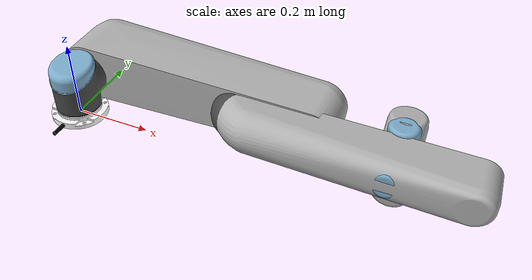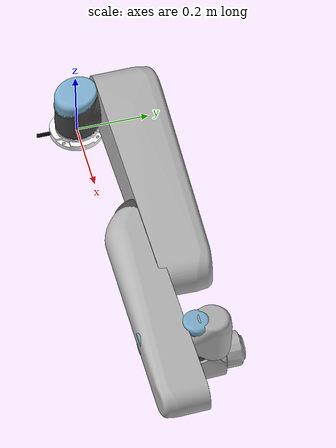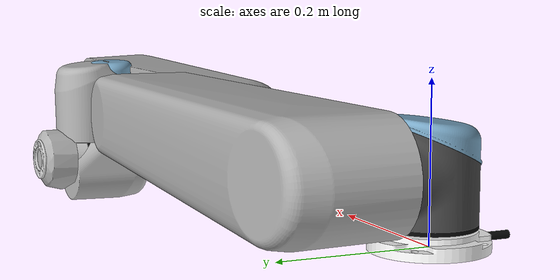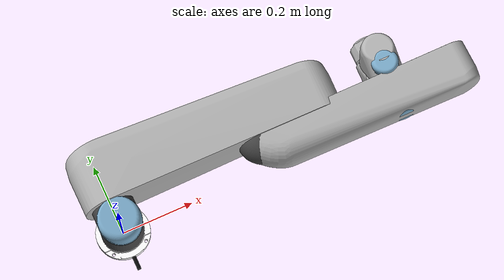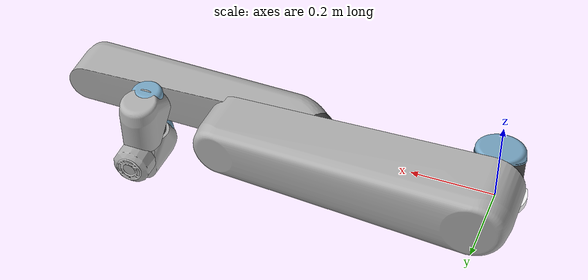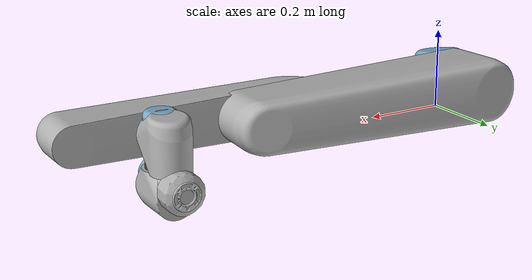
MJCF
<mujoco model="ur5-arm">
  <compiler angle="radian" meshdir="assets" autolimits="true"/>

  <custom>
        <!-- define ROS topics to listen and publish to -->
        <text name="ros_state_topic" data="joint_states" />
        <text name="ros_target_topic" data="/scaled_pos_joint_traj_controller/follow_joint_trajectory" />
        <!-- define joint names and joint position to command mapping -->
        <numeric name="ros_joint shoulder_pan_joint" data="0. 1."/>
        <numeric name="ros_joint shoulder_lift_joint" data="0. 1."/>
        <numeric name="ros_joint elbow_joint" data="0. 1."/>
        <numeric name="ros_joint wrist_1_joint" data="0. 1."/>
        <numeric name="ros_joint wrist_2_joint" data="0. 1."/>
        <numeric name="ros_joint wrist_3_joint" data="0. 1."/>
  </custom>

  <default>
    <joint axis="0 1 0" range="-6.28319 6.28319"/>
    <position ctrlrange="-6.2831 6.2831"/>

    <default class="visual">
      <geom type="mesh" contype="0" conaffinity="0" group="2"/>
    </default>
    <default class="collision">
      <geom type="mesh" group="3"/>
    </default>

    <site size="0.001" rgba="0.5 0.5 0.5 0.3" group="4"/>

    <!-- Reference:
      https://www.universal-robots.com/articles/ur/robot-care-maintenance/max-joint-torques/ -->
    <default class="size3">
      <joint armature="0.1" damping="200"/>
      <position kp="3500" forcerange="-150 150"/>
      <default class="size3_limited">
        <joint range="-3.1415 3.1415"/>
        <position ctrlrange="-3.1415 3.1415"/>
      </default>
    </default>
    <default class="size1">
      <joint armature="0.1" damping="15"/>
      <position kp="3000" forcerange="-28 28"/>
    </default>
  </default>

  <asset>
    <material name="black" specular="0.5" shininess="0.25" rgba="0.033 0.033 0.033 1"/>
    <material name="jointgray" specular="0.5" shininess="0.25" rgba="0.278 0.278 0.278 1"/>
    <material name="linkgray" specular="0.5" shininess="0.25" rgba="0.82 0.82 0.82 1"/>
    <material name="urblue" specular="0.5" shininess="0.25" rgba="0.49 0.678 0.8 1"/>
    <material name="silver" specular="0.5" shininess="0.25" rgba="0.525 0.525 0.525"/>

    <mesh name="base" file="base.stl"/>
    <mesh name="shoulder" file="shoulder.stl"/>
    <mesh name="upperarm" file="upperarm.stl"/>
    <mesh name="forearm" file="forearm.stl"/>
    <mesh name="wrist1" file="wrist1.stl"/>
    <mesh name="wrist2" file="wrist2.stl"/>
    <mesh name="wrist3" file="wrist3.stl"/>

    <mesh file="base_0.obj"/>
    <mesh file="base_1.obj"/>
    <mesh file="shoulder_0.obj"/>
    <mesh file="shoulder_1.obj"/>
    <mesh file="shoulder_2.obj"/>
    <mesh file="upperarm_0.obj"/>
    <mesh file="upperarm_1.obj"/>
    <mesh file="upperarm_2.obj"/>
    <mesh file="upperarm_3.obj"/>
    <mesh file="forearm_0.obj"/>
    <mesh file="forearm_1.obj"/>
    <mesh file="forearm_2.obj"/>
    <mesh file="wrist1_0.obj"/>
    <mesh file="wrist1_1.obj"/>
    <mesh file="wrist1_2.obj"/>
    <mesh file="wrist2_0.obj"/>
    <mesh file="wrist2_1.obj"/>
    <mesh file="wrist2_2.obj"/>
    <mesh file="wrist3_0.obj"/>
    <mesh file="wrist3_1.obj"/>
    <mesh file="optoforce_base.obj"/>
    <mesh file="optoforce_connector.obj"/>
    <mesh file="optoforce_screws.obj"/>
  </asset>
  <worldbody>
    <body name="base">
      <geom quat="0.707 0.707 0 0" mesh="base_0" material="black" class="visual"/>
      <geom quat="0.707 0.707 0 0" mesh="base_1" material="silver" class="visual"/>
      <geom quat="-1 0 0 0" type="mesh" class="collision" mesh="base"/>
      <body name="shoulder_link" pos="0 0 0.089159" quat="0 0 0 1">
        <inertial pos="0 0 0" mass="3.7" diaginertia="0.0149724 0.0149724 0.0104063"/>
        <joint name="shoulder_pan_joint" class="size3" axis="0 0 1" range="-6.28319 6.28319"/>
        <geom mesh="shoulder_0" quat="0 0 0.707 0.707" material="urblue" class="visual"/>
        <geom mesh="shoulder_1" quat="0 0 0.707 0.707" material="black" class="visual"/>
        <geom mesh="shoulder_2" quat="0 0 0.707 0.707" material="jointgray" class="visual"/>

        <geom quat="0 0 0 1" type="mesh" class="collision" mesh="shoulder"/>
        <body name="upper_arm_link" pos="0 0 0" quat="0.707107 0.707107 0 0">
          <inertial pos="-0.2125 0 0.136" quat="0.707107 0 0.707107 0" mass="8.393" diaginertia="0.133886 0.133886 0.0151074"/>
          <joint name="shoulder_lift_joint" pos="0 0 0" axis="0 0 1" range="-6.28319 6.28319"/>

          <geom mesh="upperarm_0" pos="0 0 0.13585" quat="0 -0.7071 0.7071 0" material="linkgray" class="visual"/>
          <geom mesh="upperarm_1" pos="0 0 0.13585" quat="0 -0.7071 0.7071 0" material="urblue" class="visual"/>
          <geom mesh="upperarm_2" pos="0 0 0.13585" quat="0 -0.7071 0.7071 0" material="black" class="visual"/>
          <geom mesh="upperarm_3" pos="0 0 0.13585" quat="0 -0.7071 0.7071 0" material="jointgray" class="visual"/>
          <geom pos="0 0 0.13585" quat="0.5 0.5 -0.5 -0.5" type="mesh" rgba="0.7 0.7 0.7 1" mesh="upperarm"/>

          <body name="forearm_link" pos="-0.425 0 0">
            <inertial pos="-0.196125 0 0.0165" quat="0.707107 0 0.707107 0" mass="2.275" diaginertia="0.0312168 0.0312168 0.004095"/>
            <joint name="elbow_joint" pos="0 0 0" axis="0 0 1" range="-3.14159 3.14159"/>

            <geom mesh="forearm_0" pos="0 0 0.0165" quat="0 -0.7071 0.7071 0" material="jointgray" class="visual"/>
            <geom mesh="forearm_1" pos="0 0 0.0165" quat="0 -0.7071 0.7071 0"  material="linkgray" class="visual"/>
            <geom mesh="forearm_2" pos="0 0 0.0165" quat="0 -0.7071 0.7071 0"  material="urblue" class="visual"/>
            <geom pos="0 0 0.0165" quat="0.5 0.5 -0.5 -0.5" type="mesh" rgba="0.7 0.7 0.7 1" mesh="forearm"/>

            <body name="wrist_1_link" pos="-0.39225 0 0.10915">
              <inertial pos="0 0 0" quat="0.5 0.5 -0.5 0.5" mass="1.219" diaginertia="0.0021942 0.00201389 0.00201389"/>
              <joint name="wrist_1_joint" pos="0 0 0" axis="0 0 1" range="-6.28319 6.28319"/>

              <geom mesh="wrist1_0" pos="0 0 -0.093" quat="0 1 0 0" material="urblue" class="visual"/>
              <geom mesh="wrist1_1" pos="0 0 -0.093" quat="0 1 0 0" material="jointgray" class="visual"/>
              <geom mesh="wrist1_2" pos="0 0 -0.093" quat="0 1 0 0" material="black" class="visual"/>

              <geom pos="0 0 -0.093" quat="0.707107 0.707107 0 0" type="mesh" rgba="0.7 0.7 0.7 1" mesh="wrist1"/>
              <body name="wrist_2_link" pos="0 -0.09465 -1.9413e-11" quat="0.707107 0.707107 0 0">
                <inertial pos="0 0 0" quat="0.5 0.5 -0.5 0.5" mass="1.219" diaginertia="0.0021942 0.00183104 0.00183104"/>
                <joint name="wrist_2_joint" pos="0 0 0" axis="0 0 1" range="-6.28319 6.28319"/>

                <geom mesh="wrist2_0" pos="0 0 -0.095" quat="0.707107 0.707107 0 0" material="urblue" class="visual"/>
                <geom mesh="wrist2_1" pos="0 0 -0.095" quat="0.707107 0.707107 0 0" material="jointgray" class="visual"/>
                <geom mesh="wrist2_2" pos="0 0 -0.095" quat="0.707107 0.707107 0 0" material="black" class="visual"/>

                <geom pos="0 0 -0.095" type="mesh" rgba="0.7 0.7 0.7 1" mesh="wrist2"/>

                <body name="wrist_3_link" pos="0 0.0823 -1.688e-11" quat="0.707107 -0.707107 0 0">
                  <inertial pos="0 0 -0.01525" quat="0.5 0.5 -0.5 0.5" mass="0.1879" diaginertia="0.000132117 8.06247e-05 8.06247e-05"/>
                  <joint name="wrist_3_joint" pos="0 0 0" axis="0 0 1" range="-6.28319 6.28319"/>

                  <geom mesh="wrist3_0" pos="0 0 -0.0818" quat="0 1 0 0" material="silver" class="visual"/>
                  <geom mesh="wrist3_1" pos="0 0 -0.0818" quat="0 1 0 0" material="linkgray" class="visual"/>
                  <geom pos="0 0 -0.0818" quat="0.707107 0.707107 0 0" type="mesh" rgba="0.7 0.7 0.7 1" mesh="wrist3"/>

                  <body name="eef_body" pos="0 0 0" quat="-0.5 -0.5 -0.5 -0.5"/>
                  <body name="flange" pos="0 0 0" quat="0.5 -0.5 -0.5 -0.5"/>

                  <body name="onrobot_optoforce" pos="0 0 0">
                    <geom mesh="optoforce_base" pos="0.0 0 -0.006" quat="0 0 0.707 0.707" material="linkgray" class="visual"/>
                    <geom mesh="optoforce_connector" pos="0.0 0 -0.006" quat="0 0 0.707 0.707" material="silver" class="visual"/>
                    <geom mesh="optoforce_screws" pos="0.0 0 -0.006" quat="0 0 0.707 0.707" material="black" class="visual"/>
                    <site name="attachment_site" pos="0 0 0.0435" quat="-1 0 0 0"/>
                  </body>

                </body>
              </body>
            </body>
          </body>
        </body>
      </body>
    </body>
  </worldbody>

  <actuator>
    <position class="size3" name="shoulder_pan" joint="shoulder_pan_joint"/>
    <position class="size3" name="shoulder_lift" joint="shoulder_lift_joint"/>
    <position class="size3_limited" name="elbow" joint="elbow_joint"/>
    <position class="size1" name="wrist_1" joint="wrist_1_joint"/>
    <position class="size1" name="wrist_2" joint="wrist_2_joint"/>
    <position class="size1" name="wrist_3" joint="wrist_3_joint"/>
  </actuator>

  <keyframe>
    <!-- arm is standing upright -->
    <key name="home" qpos="0 -1.5707 0 0 0 0"
        ctrl="0 -1.5707 0 0 0 0"/>

    <!-- ik_body is centered over the left half of the table with ik_body_height=0.3 -->
    <!--key name="real_robot_initial" qpos="0.6985 -1.3467 1.7360 -0.3893 0.6983 1.5708"
        ctrl="0.6985 -1.3467 1.7360 -0.3893 0.6983 1.5708"/-->

    <!-- ik_body is centered over the left half of the table with ik_body_height=0.5 -->
    <key name="real_robot_initial" qpos="0.6985 -1.4106 1.2932 0.1174 0.6983 1.5708"
        ctrl="0.6985 -1.4106 1.2932 0.1174 0.6983 1.5708"/>

    <!-- ik_body is centered 0.6m in front of the base -->
    <key name="default_initial" qpos="-0.2780 -1.5890 1.4855 0.1035 1.2927 1.5707"
        ctrl="-0.2780 -1.5890 1.4855 0.1035 1.2927 1.5707"/>
  </keyframe>

</mujoco>
